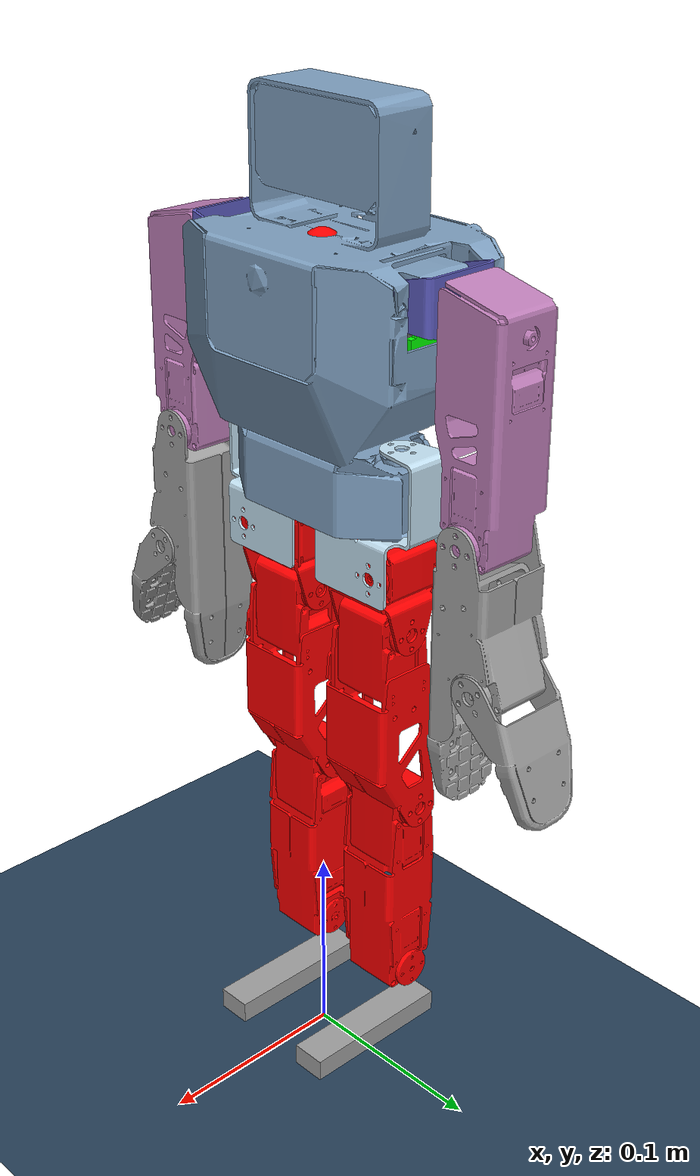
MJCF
<mujoco model="z-bot-v2_sim smooth scene">
  <include file="robot.xml" />

  <statistic center="0.15 0.1 0.38" extent=".8" meansize="0.05" />

  <visual>
    <headlight diffuse="0.6 0.6 0.6" ambient="0.3 0.3 0.3" specular="0 0 0" />
    <rgba haze="0.15 0.25 0.35 1" />
    <global azimuth="220" elevation="-10" />
    <quality shadowsize="8192" />
  </visual>

  <asset>
    <texture type="skybox" builtin="gradient" rgb1="0.3 0.5 0.7" rgb2="0 0 0" width="512" height="3072" />
    <texture type="2d" name="groundplane" builtin="checker" mark="edge" rgb1="0.2 0.3 0.4" rgb2="0.1 0.2 0.3" markrgb="0.8 0.8 0.8" width="300" height="300" />
    <material name="groundplane" texture="groundplane" texuniform="true" texrepeat="5 5" reflectance="0.2" />
  </asset>

  <worldbody>
    <!-- this is the hfield floor -->

    <!-- this is the floor from mjx playground -->
    <geom name="floor" size="0 0 0.01" type="plane" material="groundplane" contype="1" conaffinity="0"/>
  </worldbody>
</mujoco>

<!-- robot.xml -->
<mujoco model="z-bot2_fe_urdf">
  <default>
    <default class="robot">
      <default class="motor">
        <joint armature="0.0005" frictionloss="0.1" actuatorfrcrange="-2.0 2.0" />
        <motor ctrlrange="-2.0 2.0" />
      </default>
      <default class="visual">
        <geom material="visualgeom" contype="0" conaffinity="0" group="2" />
      </default>
      <default class="collision">
        <geom condim="6" friction="0.8 0.02 0.01" group="3" />
      </default>
    </default>
  </default>

  <compiler angle="radian" />

  <asset>
    <material name="floating_base_link_material" rgba="1 0 0 1" />
    <material name="Z_BOT2_MASTER_BODY_SKELETON_material" rgba="0.494118 0.623529 0.749020 1" />
    <material name="IMU_material" rgba="0 1 0 1" />
    <material name="Z_BOT2_MASTER_SHOULDER2_material" rgba="0.364706 0.360784 0.749020 1" />
    <material name="U_HIP_L_material" rgba="0.768627 0.886275 0.952941 1" />
    <material name="3215_1Flange_material" rgba="0.749020 0.498039 0.725490 1" />
    <material name="R_ARM_MIRROR_1_material" rgba="0.647059 0.647059 0.647059 1" />
    <material name="L_ARM_MIRROR_1_material" rgba="0.627451 0.627451 0.627451 1" />
    <material name="default_material" rgba="0.7 0.7 0.7 1" />
    <mesh name="Z_BOT2_MASTER_BODY_SKELETON.stl" file="meshes/Z_BOT2_MASTER_BODY_SKELETON.stl" />
    <mesh name="IMU.stl" file="meshes/IMU.stl" />
    <mesh name="Z_BOT2_MASTER_SHOULDER2.stl" file="meshes/Z_BOT2_MASTER_SHOULDER2.stl" />
    <mesh name="3215_1Flange.stl" file="meshes/3215_1Flange.stl" />
    <mesh name="R_ARM_MIRROR_1.stl" file="meshes/R_ARM_MIRROR_1.stl" />
    <mesh name="FINGER_1.stl" file="meshes/FINGER_1.stl" />
    <mesh name="Z_BOT2_MASTER_SHOULDER2_2.stl" file="meshes/Z_BOT2_MASTER_SHOULDER2_2.stl" />
    <mesh name="3215_1Flange_2.stl" file="meshes/3215_1Flange_2.stl" />
    <mesh name="L_ARM_MIRROR_1.stl" file="meshes/L_ARM_MIRROR_1.stl" />
    <mesh name="FINGER_1_2.stl" file="meshes/FINGER_1_2.stl" />
    <mesh name="U_HIP_L.stl" file="meshes/U_HIP_L.stl" />
    <mesh name="3215_BothFlange_5.stl" file="meshes/3215_BothFlange_5.stl" />
    <mesh name="3215_BothFlange_9.stl" file="meshes/3215_BothFlange_9.stl" />
    <mesh name="3215_BothFlange_13.stl" file="meshes/3215_BothFlange_13.stl" />
    <mesh name="FOOT.collision.stl" file="meshes/FOOT.collision.stl" />
    <mesh name="FOOT.stl" file="meshes/FOOT.stl" />
    <mesh name="U_HIP_R.stl" file="meshes/U_HIP_R.stl" />
    <mesh name="3215_BothFlange_6.stl" file="meshes/3215_BothFlange_6.stl" />
    <mesh name="3215_BothFlange_10.stl" file="meshes/3215_BothFlange_10.stl" />
    <mesh name="3215_BothFlange_14.stl" file="meshes/3215_BothFlange_14.stl" />
    <mesh name="FOOT_2.collision.stl" file="meshes/FOOT_2.collision.stl" />
    <mesh name="FOOT_2.stl" file="meshes/FOOT_2.stl" />
  </asset>

  <worldbody>
    <body name="floating_base_link" pos="0.00000000 0.00000000 0.42181800" quat="0.7071 0 0 0.7071" childclass="robot">
      <freejoint name="floating_base" />
      <geom name="floating_base_link_visual" material="floating_base_link_material" type="sphere" size="0.01" class="visual" />
      <body name="Z_BOT2_MASTER_BODY_SKELETON">
        <inertial pos="-0.000189 0.010193 -0.031201" mass="1.546392" diaginertia="0.004795 0.005455 0.002588" />
        <geom name="Z_BOT2_MASTER_BODY_SKELETON_visual" material="Z_BOT2_MASTER_BODY_SKELETON_material" type="mesh" mesh="Z_BOT2_MASTER_BODY_SKELETON.stl" class="visual" />
        <body name="IMU" pos="0.044470 0.006575 -0.025518" quat="0.5000001633974483 0.4999999999999733 -0.49999983660255165 -0.4999999999999733">
          <inertial pos="-0.010000 -0.007500 -0.001235" mass="0.001887" diaginertia="1e-06 1e-06 1e-06" />
          <geom name="IMU_visual" material="IMU_material" type="mesh" mesh="IMU.stl" class="visual" />
          <site name="IMU_site" quat="1.0 0.0 0.0 0.0" pos="0.0 0.0 0.0" />
        </body>
        <body name="Z_BOT2_MASTER_SHOULDER2" pos="0.055995 -0.010610 -0.009528" quat="-1.2247452309842457e-07 -1.22474483074382e-07 -0.7071066656470838 -0.7071068967259713">
          <joint name="left_shoulder_yaw" type="hinge" class="motor" range="-1.047198 0" axis="0 0 1" />
          <inertial pos="-0.012788 0.001374 0.018800" mass="0.024098" diaginertia="7e-06 8e-06 3e-06" />
          <geom name="Z_BOT2_MASTER_SHOULDER2_visual" material="Z_BOT2_MASTER_SHOULDER2_material" type="mesh" mesh="Z_BOT2_MASTER_SHOULDER2.stl" class="visual" />
          <body name="3215_1Flange" pos="-0.020845 -0.004900 0.018800" quat="0.5000001633974483 -0.4999999999999733 0.49999983660255165 -0.4999999999999733">
            <joint name="left_shoulder_pitch" type="hinge" class="motor" range="-2.967060 3.141593" axis="0 0 1" />
            <inertial pos="0.033642 0.000438 -0.019963" mass="0.181960" diaginertia="5.4e-05 0.000228 0.000232" />
            <geom name="3215_1Flange_visual" material="3215_1Flange_material" type="mesh" mesh="3215_1Flange.stl" class="visual" />
            <body name="R_ARM_MIRROR_1" pos="0.092984 0.019800 -0.018600" quat="-1.2247452309842457e-07 -1.22474483074382e-07 0.7071066656470838 0.7071068967259713">
              <joint name="left_elbow" type="hinge" class="motor" range="-1.570796 1.570796" axis="0 0 -1" />
              <inertial pos="-0.051119 0.001150 -0.017743" mass="0.186073" diaginertia="6.1e-05 0.000218 0.000201" />
              <geom name="R_ARM_MIRROR_1_visual" material="R_ARM_MIRROR_1_material" type="mesh" mesh="R_ARM_MIRROR_1.stl" class="visual" />
              <body name="FINGER_1" pos="-0.066206 -0.011778 0.001260" quat="-9.934637848443371e-08 0.5735765089253517 0.8191519934718928 -1.418813056556475e-07">
                <joint name="left_gripper" type="hinge" class="motor" range="-0.349066 0.698132" axis="0 0 1" />
                <inertial pos="-0.010671 -0.028985 0.018800" mass="0.044318" diaginertia="2.3e-05 1e-05 1.6e-05" />
                <geom name="FINGER_1_visual" material="L_ARM_MIRROR_1_material" type="mesh" mesh="FINGER_1.stl" class="visual" />
              </body>
            </body>
          </body>
        </body>
        <body name="Z_BOT2_MASTER_SHOULDER2_2" pos="-0.055995 -0.010610 -0.009528" quat="0.7071068967259818 -0.7071066656470943 0.0 0.0">
          <joint name="right_shoulder_yaw" type="hinge" class="motor" range="0 1.047198" axis="0 0 1" />
          <inertial pos="-0.012788 -0.001374 0.018800" mass="0.024098" diaginertia="7e-06 8e-06 3e-06" />
          <geom name="Z_BOT2_MASTER_SHOULDER2_2_visual" material="Z_BOT2_MASTER_SHOULDER2_material" type="mesh" mesh="Z_BOT2_MASTER_SHOULDER2_2.stl" class="visual" />
          <body name="3215_1Flange_2" pos="-0.020845 0.004900 0.018800" quat="0.5000001633974483 0.4999999999999733 0.49999983660255165 0.4999999999999733">
            <joint name="right_shoulder_pitch" type="hinge" class="motor" range="-3.141593 2.967060" axis="0 0 1" />
            <inertial pos="0.033642 -0.000433 -0.019968" mass="0.181960" diaginertia="5.4e-05 0.000228 0.000232" />
            <geom name="3215_1Flange_2_visual" material="3215_1Flange_material" type="mesh" mesh="3215_1Flange_2.stl" class="visual" />
            <body name="L_ARM_MIRROR_1" pos="0.092984 -0.019800 -0.018600" quat="0.5000001633974483 -0.4999999999999733 -0.4999999999999733 -0.49999983660255165">
              <joint name="right_elbow" type="hinge" class="motor" range="-1.570796 1.570796" axis="0 0 1" />
              <inertial pos="0.001144 0.051123 0.017764" mass="0.186073" diaginertia="0.000218 6.1e-05 0.000201" />
              <geom name="L_ARM_MIRROR_1_visual" material="L_ARM_MIRROR_1_material" type="mesh" mesh="L_ARM_MIRROR_1.stl" class="visual" />
              <body name="FINGER_1_2" pos="-0.011778 0.066206 -0.001260" quat="0.9848077400232231 0.0 0.0 0.1736482513311082">
                <joint name="right_gripper" type="hinge" class="motor" range="-0.698132 0.349066" axis="0 0 1" />
                <inertial pos="-0.010671 0.028985 0.018799" mass="0.044318" diaginertia="2.3e-05 1e-05 1.6e-05" />
                <geom name="FINGER_1_2_visual" material="L_ARM_MIRROR_1_material" type="mesh" mesh="FINGER_1_2.stl" class="visual" />
              </body>
            </body>
          </body>
        </body>
        <body name="U_HIP_L" pos="0.042808 0.007735 -0.083418" quat="3.000000781252362e-14 -1.7320510330969674e-07 0.99999999999997 -1.7320510330969674e-07">
          <joint name="left_hip_yaw" type="hinge" class="motor" range="-1.047198 1.047198" axis="0 0 1" />
          <inertial pos="-0.001161 -0.004396 0.035396" mass="0.047132" diaginertia="2.9e-05 3e-05 1.9e-05" />
          <geom name="U_HIP_L_visual" material="U_HIP_L_material" type="mesh" mesh="U_HIP_L.stl" class="visual" />
          <body name="3215_BothFlange_5" pos="0 0.017700 0.056400" quat="0.7071068967259818 -0.7071066656470943 0.0 0.0">
            <joint name="left_hip_roll" type="hinge" class="motor" range="-0.174533 1.570796" axis="0 0 -1.0" />
            <inertial pos="0.012332 -0.008997 -0.018508" mass="0.068295" diaginertia="1.9e-05 2.4e-05 2.5e-05" />
            <geom name="3215_BothFlange_5_visual" material="floating_base_link_material" type="mesh" mesh="3215_BothFlange_5.stl" class="visual" />
            <body name="3215_BothFlange_9" pos="-0.006400 -0.032000 -0.017900" quat="0.5000001633974483 0.4999999999999733 -0.49999983660255165 -0.4999999999999733">
              <joint name="left_hip_pitch" type="hinge" class="motor" range="-1.570796 1.570796" axis="0 0 1" />
              <inertial pos="0.043662 -0.002857 -0.018525" mass="0.143337" diaginertia="4.9e-05 0.000148 0.000128" />
              <geom name="3215_BothFlange_9_visual" material="floating_base_link_material" type="mesh" mesh="3215_BothFlange_9.stl" class="visual" />
              <body name="3215_BothFlange_13" pos="0.100000 0.010000 -0.001260">
                <joint name="left_knee" type="hinge" class="motor" range="-1.221731 2.792527" axis="0 0 1" />
                <inertial pos="0.050000 0 -0.017988" mass="0.128213" diaginertia="3.5e-05 0.000154 0.000145" />
                <geom name="3215_BothFlange_13_visual" material="floating_base_link_material" type="mesh" mesh="3215_BothFlange_13.stl" class="visual" />
                <body name="FOOT" pos="0.100000 0 0.000800" quat="-1.2247452309842457e-07 -0.7071068967259713 -0.7071066656470838 -1.22474483074382e-07">
                  <joint name="left_ankle" type="hinge" class="motor" range="-1.570796 1.570796" axis="0 0 1" />
                  <inertial pos="-0.015078 0.027835 0.018700" mass="0.278140" diaginertia="4.5e-05 0.000205 0.000182" />
                  <!-- NOTE: With stl feet collisions, we get ~ 1887 samples per second -->
                  <!-- NOTE: With box collisions, we get ~ 11,036 samples per second, i.e. it is ~5.8 times faster than stl collisions -->
                  <!-- See https://github.com/kscalelabs/ksim/pull/49 for more details  -->
                  <!-- Replace the mesh-based collision with a box using computed center and half-extents -->
                  <geom name="FOOT_box_collision" type="box" pos="-0.01606 0.02992 0.01870" size="0.04094 0.00572 0.009" class="collision" />
                  <geom name="FOOT_box_visual" type="box" pos="-0.01606 0.03992 0.01870" size="0.04094 0.00572 0.009" material="L_ARM_MIRROR_1_material" class="visual" />

                </body>
              </body>
            </body>
          </body>
        </body>
        <body name="U_HIP_R" pos="-0.042868 0.007735 -0.083418" quat="3.000000781252362e-14 -1.7320510330969674e-07 0.99999999999997 -1.7320510330969674e-07">
          <joint name="right_hip_yaw" type="hinge" class="motor" range="-1.047198 1.047198" axis="0 0 1" />
          <inertial pos="0.001161 -0.004396 0.035396" mass="0.047132" diaginertia="2.9e-05 3e-05 1.9e-05" />
          <geom name="U_HIP_R_visual" material="U_HIP_L_material" type="mesh" mesh="U_HIP_R.stl" class="visual" />
          <body name="3215_BothFlange_6" pos="0 -0.017700 0.056400" quat="-1.2247452309842457e-07 1.22474483074382e-07 0.7071066656470838 -0.7071068967259713">
            <joint name="right_hip_roll" type="hinge" class="motor" range="-1.570796 0.174533" axis="0 0 1" />
            <inertial pos="0.012332 -0.008983 -0.017811" mass="0.068295" diaginertia="1.9e-05 2.4e-05 2.5e-05" />
            <geom name="3215_BothFlange_6_visual" material="floating_base_link_material" type="mesh" mesh="3215_BothFlange_6.stl" class="visual" />
            <body name="3215_BothFlange_10" pos="-0.006400 -0.032000 -0.018900" quat="0.5000001633974483 0.4999999999999733 -0.49999983660255165 -0.4999999999999733">
              <joint name="right_hip_pitch" type="hinge" class="motor" range="-1.570796 1.570796" axis="0 0 1" />
              <inertial pos="0.043662 0.002863 -0.018537" mass="0.143337" diaginertia="4.9e-05 0.000148 0.000128" />
              <geom name="3215_BothFlange_10_visual" material="floating_base_link_material" type="mesh" mesh="3215_BothFlange_10.stl" class="visual" />
              <body name="3215_BothFlange_14" pos="0.100000 -0.010000 -0.001260">
                <joint name="right_knee" type="hinge" class="motor" range="-2.792527 1.221731" axis="0 0 1" />
                <inertial pos="0.050000 0 -0.017888" mass="0.128213" diaginertia="3.6e-05 0.000155 0.000145" />
                <geom name="3215_BothFlange_14_visual" material="floating_base_link_material" type="mesh" mesh="3215_BothFlange_14.stl" class="visual" />
                <body name="FOOT_2" pos="0.100000 0 0.001000" quat="-1.2247452309842457e-07 -0.7071068967259713 0.7071066656470838 1.22474483074382e-07">
                  <joint name="right_ankle" type="hinge" class="motor" range="-1.570796 1.570796" axis="0 0 1" />
                  <inertial pos="-0.015078 -0.027835 0.018700" mass="0.278140" diaginertia="4.5e-05 0.000205 0.000182" />
                  <!-- NOTE: With stl feet collisions, we get ~ 1887 samples per second -->
                  <!-- NOTE: With box collisions, we get ~ 11,036 samples per second, i.e. it is ~5.8 times faster than stl collisions -->
                  <!-- See https://github.com/kscalelabs/ksim/pull/49 for more details  -->
                  <!-- Replace the mesh-based collision with a box using computed center and half-extents -->
                  <geom name="FOOT_2_box_collision" type="box" pos="-0.01606 -0.02992 0.01870" size="0.04094 0.00572 0.009" class="collision" />
                  <!-- Use the same box for visual inspection -->
                  <geom name="FOOT_2_box_visual" type="box" pos="-0.01606 -0.03992 0.01870" size="0.04094 0.00572 0.009" material="L_ARM_MIRROR_1_material" class="visual" />
                </body>
              </body>
            </body>
          </body>
        </body>
      </body>
      <site name="floating_base_link_site" />
      <camera name="front_camera" mode="track" fovy="90.0" quat="4.329780281177467e-17 4.329780281177466e-17 0.7071067811865475 0.7071067811865476" pos="0.0 2.0 0.5" />
      <camera name="side_camera" mode="track" fovy="90.0" quat="-0.5 -0.4999999999999999 0.5 0.5000000000000001" pos="-2.0 0.0 0.5" />
    </body>
  </worldbody>

  <actuator>
    <motor name="left_shoulder_yaw_ctrl" joint="left_shoulder_yaw" class="motor" />
    <motor name="left_shoulder_pitch_ctrl" joint="left_shoulder_pitch" class="motor" />
    <motor name="left_elbow_ctrl" joint="left_elbow" class="motor" />
    <motor name="left_gripper_ctrl" joint="left_gripper" class="motor" />
    <motor name="right_shoulder_yaw_ctrl" joint="right_shoulder_yaw" class="motor" />
    <motor name="right_shoulder_pitch_ctrl" joint="right_shoulder_pitch" class="motor" />
    <motor name="right_elbow_ctrl" joint="right_elbow" class="motor" />
    <motor name="right_gripper_ctrl" joint="right_gripper" class="motor" />
    <motor name="left_hip_yaw_ctrl" joint="left_hip_yaw" class="motor" />
    <motor name="left_hip_roll_ctrl" joint="left_hip_roll" class="motor" />
    <motor name="left_hip_pitch_ctrl" joint="left_hip_pitch" class="motor" />
    <motor name="left_knee_ctrl" joint="left_knee" class="motor" />
    <motor name="left_ankle_ctrl" joint="left_ankle" class="motor" />
    <motor name="right_hip_yaw_ctrl" joint="right_hip_yaw" class="motor" />
    <motor name="right_hip_roll_ctrl" joint="right_hip_roll" class="motor" />
    <motor name="right_hip_pitch_ctrl" joint="right_hip_pitch" class="motor" />
    <motor name="right_knee_ctrl" joint="right_knee" class="motor" />
    <motor name="right_ankle_ctrl" joint="right_ankle" class="motor" />
  </actuator>

  <sensor>
    <accelerometer name="IMU_acc" site="IMU_site" noise="0.01" />
    <gyro name="IMU_gyro" site="IMU_site" noise="0.01" />
    <magnetometer name="IMU_mag" site="IMU_site" noise="0.05" />
    <framepos name="base_link_pos" objtype="site" objname="IMU_site" />
    <framequat name="base_link_quat" objtype="site" objname="IMU_site" />
    <framelinvel name="base_link_vel" objtype="site" objname="IMU_site" />
    <frameangvel name="base_link_ang_vel" objtype="site" objname="IMU_site" />
  </sensor>

  <contact>
  <pair geom1="FOOT_box_collision" geom2="floor"/>
  <pair geom1="FOOT_2_box_collision" geom2="floor"/>
  </contact>

</mujoco>
